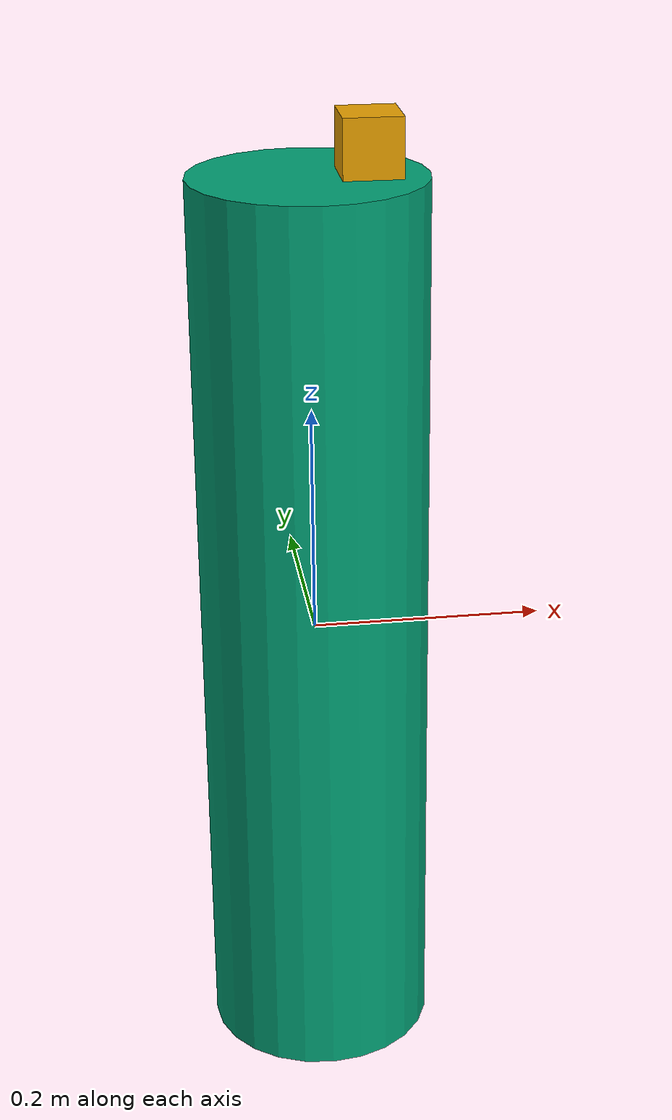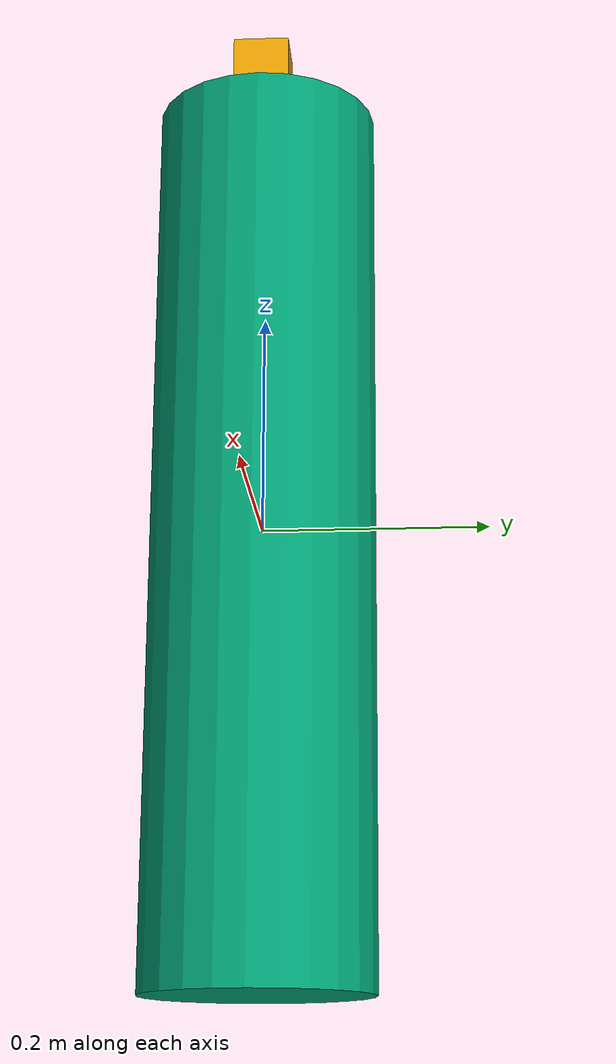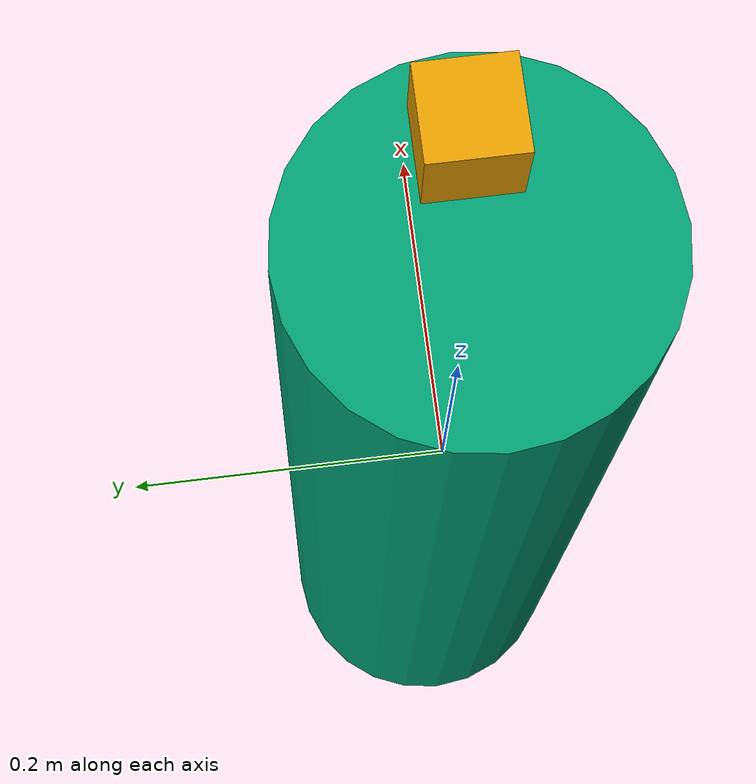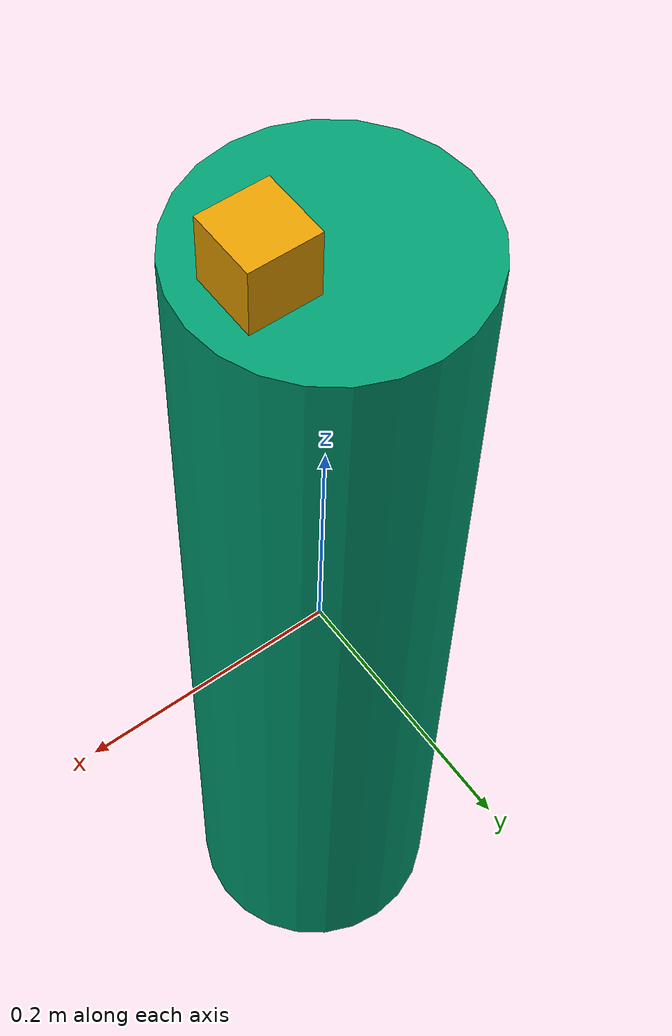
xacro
<?xml version="1.0" ?>
<robot name="camera_env" xmlns:xacro="http://www.ros.org/wiki/xacro"  >

    <xacro:arg name="topic_prefix" default="camera_1" />

    <xacro:property name="camera_base_radius" value="0.1" />
    <xacro:property name="camera_base_height" value="0.8" />
    <xacro:property name="camera_base_mass"   value="0.7" />

    <link name="camera_link">
        <inertial>
            <mass value="0.1" />
            <inertia ixx="0.000166667" iyy="0.000166667" izz="0.000166667" ixz="0.00"  iyz="0.00" ixy="0.00" />
        </inertial>
        <collision name="collision">
            <geometry>
                <box size="0.05 0.05 0.1" />
            </geometry>
        </collision>
            <visual name="visual">
                <geometry>
                    <box size="0.05 0.05 0.1" />
                </geometry>
            </visual>
    </link>

    <gazebo reference="camera_link">
        <sensor name="camera" type="camera">
            <update_rate>15.0</update_rate>
            <always_on>true</always_on>
             <visualize>true</visualize>
            <ignition_frame_id>camera_link_optical</ignition_frame_id>
            <pose>0.0 0.0 0 0 0 0</pose>
            <topic>$(arg topic_prefix)/raw_image</topic>
            <camera>
                <horizontal_fov>${radians(80)}</horizontal_fov>
                <image>
                    <width>1280</width>
                    <height>960</height>
                    <format>R8G8B8</format>
                </image>
                <clip>
                    <near>0.05</near>
                    <far>30</far>
                </clip>
            </camera>
        </sensor>
    </gazebo>

    <joint name="camera_optical_joint" type="fixed">
        <parent link="camera_link"/>
        <child link="camera_link_optical"/>
        <origin xyz="0 0 0" rpy="${-pi/2} 0 ${-pi/2}"/>
    </joint>

    <link name="camera_link_optical"></link>

    <gazebo reference="camera_link">
        <visual>
            <material> <!-- blue COLOR -->
                <ambient>0 0 1 1</ambient>
                <diffuse>0 0 1 1</diffuse>
                <specular>0 0 1 0</specular>
                <emissive>0 0 1 1</emissive>
            </material>
        </visual>
        <mu1>0.2</mu1>
        <mu2>0.2</mu2>
        <selfCollide>true</selfCollide>
        <gravity>true</gravity>
    </gazebo>

    <link name="camera_base_link">
		<inertial>
            <mass value="0.3"/>
            <inertia  ixx="0.002385" ixy="0.00"  ixz="0.00" iyy="0.002385" iyz="0.00" izz="0.00027" />

		</inertial>
		<visual>
			<origin xyz="0 0 0" rpy="0 0 0"/>
			<geometry>
				<cylinder length="${camera_base_height}" radius="${camera_base_radius}"/>
			</geometry>
		</visual>
		<collision>
			<origin xyz="0 0 0" rpy="0 0 0"/>
			<geometry>
				<cylinder length="${camera_base_height}" radius="${camera_base_radius}"/>
			</geometry>
		</collision>
	</link>

    <gazebo reference="camera_base_link">
        <visual>
            <material> <!-- gray COLOR -->
                <ambient>0.1 0.1 0.1 1</ambient>
                <diffuse>0.1 0.1 0.1 1</diffuse>
                <specular>0.1 0.1 0.1 0</specular>
                <emissive>0.1 0.1 0.1 1</emissive>
            </material>
        </visual>
        <mu1>0.2</mu1>
        <mu2>0.2</mu2>
        <selfCollide>true</selfCollide>
        <gravity>true</gravity>
    </gazebo>

    <joint name="joint_camera" type="fixed">
        <parent link="camera_base_link"/>
        <child link="camera_link"/>
        <origin xyz="0.05 0.0 ${camera_base_height/2.0}"/>
    </joint>

    <gazebo>
        <static>true</static>
    </gazebo>
</robot>
